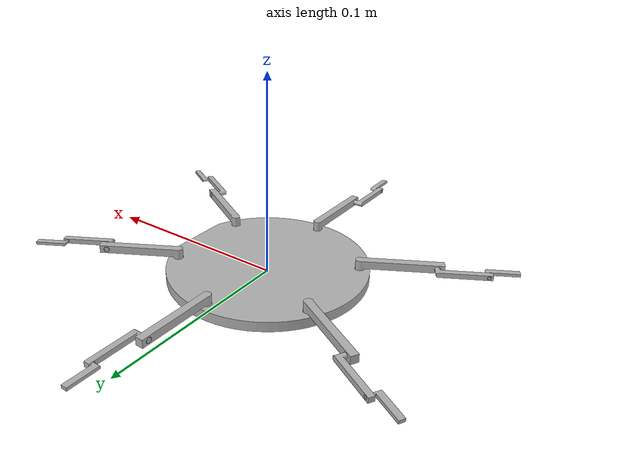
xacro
<?xml version="1.0" ?>
<robot name="My_Hexapod" xmlns:xacro="http://www.ros.org/wiki/xacro">

<xacro:include filename="$(find My_Hexapod_description)/urdf/materials.xacro" />
<xacro:include filename="$(find My_Hexapod_description)/urdf/My_Hexapod.trans" />
<xacro:include filename="$(find My_Hexapod_description)/urdf/My_Hexapod.gazebo" />
<link name="base_link">
  <inertial>
    <origin xyz="-0.0005142477518053707 -0.0002721610035063814 0.002333170102402172" rpy="0 0 0"/>
    <mass value="0.04063775659552386"/>
    <inertia ixx="2.5e-05" iyy="2.5e-05" izz="5e-05" ixy="-0.0" iyz="0.0" ixz="0.0"/>
  </inertial>
  <visual>
    <origin xyz="0 0 0" rpy="0 0 0"/>
    <geometry>
      <mesh filename="package://My_Hexapod_description/meshes/base_link.stl" scale="0.001 0.001 0.001"/>
    </geometry>
    <material name="silver"/>
  </visual>
  <collision>
    <origin xyz="0 0 0" rpy="0 0 0"/>
    <geometry>
      <mesh filename="package://My_Hexapod_description/meshes/base_link.stl" scale="0.001 0.001 0.001"/>
    </geometry>
  </collision>
</link>

<link name="link1_leg_1">
  <inertial>
    <origin xyz="4.604251569327231e-07 0.015854697725990623 0.002355706089951396" rpy="0 0 0"/>
    <mass value="0.0007847716288169711"/>
    <inertia ixx="0.0" iyy="0.0" izz="0.0" ixy="-0.0" iyz="-0.0" ixz="-0.0"/>
  </inertial>
  <visual>
    <origin xyz="8.3e-05 -0.044728 -0.004833" rpy="0 0 0"/>
    <geometry>
      <mesh filename="package://My_Hexapod_description/meshes/link1_leg_1.stl" scale="0.001 0.001 0.001"/>
    </geometry>
    <material name="silver"/>
  </visual>
  <collision>
    <origin xyz="8.3e-05 -0.044728 -0.004833" rpy="0 0 0"/>
    <geometry>
      <mesh filename="package://My_Hexapod_description/meshes/link1_leg_1.stl" scale="0.001 0.001 0.001"/>
    </geometry>
  </collision>
</link>

<link name="link2_leg_1">
  <inertial>
    <origin xyz="0.006883441772277335 0.009873057439048788 1.222460352286181e-07" rpy="0 0 0"/>
    <mass value="0.0002276885728110617"/>
    <inertia ixx="0.0" iyy="0.0" izz="0.0" ixy="-0.0" iyz="0.0" ixz="0.0"/>
  </inertial>
  <visual>
    <origin xyz="0.002083 -0.081228 -0.007833" rpy="0 0 0"/>
    <geometry>
      <mesh filename="package://My_Hexapod_description/meshes/link2_leg_1.stl" scale="0.001 0.001 0.001"/>
    </geometry>
    <material name="silver"/>
  </visual>
  <collision>
    <origin xyz="0.002083 -0.081228 -0.007833" rpy="0 0 0"/>
    <geometry>
      <mesh filename="package://My_Hexapod_description/meshes/link2_leg_1.stl" scale="0.001 0.001 0.001"/>
    </geometry>
  </collision>
</link>

<link name="link3_leg_1">
  <inertial>
    <origin xyz="-0.0016791528137478826 0.0065448384486425926 1.1233224573962974e-07" rpy="0 0 0"/>
    <mass value="8.185246040836488e-05"/>
    <inertia ixx="0.0" iyy="0.0" izz="0.0" ixy="0.0" iyz="0.0" ixz="0.0"/>
  </inertial>
  <visual>
    <origin xyz="-0.003917 -0.104233 -0.007833" rpy="0 0 0"/>
    <geometry>
      <mesh filename="package://My_Hexapod_description/meshes/link3_leg_1.stl" scale="0.001 0.001 0.001"/>
    </geometry>
    <material name="silver"/>
  </visual>
  <collision>
    <origin xyz="-0.003917 -0.104233 -0.007833" rpy="0 0 0"/>
    <geometry>
      <mesh filename="package://My_Hexapod_description/meshes/link3_leg_1.stl" scale="0.001 0.001 0.001"/>
    </geometry>
  </collision>
</link>

<link name="link1_leg_2">
  <inertial>
    <origin xyz="-0.013730393178288051 0.007927268361220235 0.00235570601544559" rpy="0 0 0"/>
    <mass value="0.0007847716288169711"/>
    <inertia ixx="0.0" iyy="0.0" izz="0.0" ixy="0.0" iyz="-0.0" ixz="0.0"/>
  </inertial>
  <visual>
    <origin xyz="0.039054 -0.022228 -0.004833" rpy="0 0 0"/>
    <geometry>
      <mesh filename="package://My_Hexapod_description/meshes/link1_leg_2.stl" scale="0.001 0.001 0.001"/>
    </geometry>
    <material name="silver"/>
  </visual>
  <collision>
    <origin xyz="0.039054 -0.022228 -0.004833" rpy="0 0 0"/>
    <geometry>
      <mesh filename="package://My_Hexapod_description/meshes/link1_leg_2.stl" scale="0.001 0.001 0.001"/>
    </geometry>
  </collision>
</link>

<link name="link2_leg_2">
  <inertial>
    <origin xyz="-0.0073035772980677705 0.09260523411056112 0.0001671221715294222" rpy="0 0 0"/>
    <mass value="0.0002276885728110617"/>
    <inertia ixx="0.0" iyy="0.0" izz="0.0" ixy="0.0" iyz="0.0" ixz="-0.0"/>
  </inertial>
  <visual>
    <origin xyz="0.069469 0.042962 -0.007666" rpy="0 0 0"/>
    <geometry>
      <mesh filename="package://My_Hexapod_description/meshes/link2_leg_2.stl" scale="0.001 0.001 0.001"/>
    </geometry>
    <material name="silver"/>
  </visual>
  <collision>
    <origin xyz="0.069469 0.042962 -0.007666" rpy="0 0 0"/>
    <geometry>
      <mesh filename="package://My_Hexapod_description/meshes/link2_leg_2.stl" scale="0.001 0.001 0.001"/>
    </geometry>
  </collision>
</link>

<link name="link3_leg_2">
  <inertial>
    <origin xyz="-0.0029524668100918555 0.10609733990236751 0.0001671122577399332" rpy="0 0 0"/>
    <mass value="8.185246040836488e-05"/>
    <inertia ixx="0.0" iyy="0.0" izz="0.0" ixy="0.0" iyz="0.0" ixz="0.0"/>
  </inertial>
  <visual>
    <origin xyz="0.092392 0.049268 -0.007666" rpy="0 0 0"/>
    <geometry>
      <mesh filename="package://My_Hexapod_description/meshes/link3_leg_2.stl" scale="0.001 0.001 0.001"/>
    </geometry>
    <material name="silver"/>
  </visual>
  <collision>
    <origin xyz="0.092392 0.049268 -0.007666" rpy="0 0 0"/>
    <geometry>
      <mesh filename="package://My_Hexapod_description/meshes/link3_leg_2.stl" scale="0.001 0.001 0.001"/>
    </geometry>
  </collision>
</link>

<link name="link1_leg_3">
  <inertial>
    <origin xyz="-0.013730393178262787 -0.007927590368276751 0.0023557060899513944" rpy="0 0 0"/>
    <mass value="0.0007847716288169711"/>
    <inertia ixx="0.0" iyy="0.0" izz="0.0" ixy="-0.0" iyz="0.0" ixz="0.0"/>
  </inertial>
  <visual>
    <origin xyz="0.039054 0.022772 -0.004833" rpy="0 0 0"/>
    <geometry>
      <mesh filename="package://My_Hexapod_description/meshes/link1_leg_3.stl" scale="0.001 0.001 0.001"/>
    </geometry>
    <material name="silver"/>
  </visual>
  <collision>
    <origin xyz="0.039054 0.022772 -0.004833" rpy="0 0 0"/>
    <geometry>
      <mesh filename="package://My_Hexapod_description/meshes/link1_leg_3.stl" scale="0.001 0.001 0.001"/>
    </geometry>
  </collision>
</link>

<link name="link2_leg_3">
  <inertial>
    <origin xyz="-0.15343155864516295 -0.0025039843319940025 0.0001671222460352265" rpy="0 0 0"/>
    <mass value="0.0002276885728110617"/>
    <inertia ixx="0.0" iyy="0.0" izz="0.0" ixy="-0.0" iyz="-0.0" ixz="-0.0"/>
  </inertial>
  <visual>
    <origin xyz="-0.071776 0.039226 -0.007666" rpy="0 0 0"/>
    <geometry>
      <mesh filename="package://My_Hexapod_description/meshes/link2_leg_3.stl" scale="0.001 0.001 0.001"/>
    </geometry>
    <material name="silver"/>
  </visual>
  <collision>
    <origin xyz="-0.071776 0.039226 -0.007666" rpy="0 0 0"/>
    <geometry>
      <mesh filename="package://My_Hexapod_description/meshes/link2_leg_3.stl" scale="0.001 0.001 0.001"/>
    </geometry>
  </collision>
</link>

<link name="link3_leg_3">
  <inertial>
    <origin xyz="-0.18586285357116175 0.0017033404502185823 0.00016711233224573577" rpy="0 0 0"/>
    <mass value="8.185246040836488e-05"/>
    <inertia ixx="0.0" iyy="0.0" izz="0.0" ixy="-0.0" iyz="0.0" ixz="0.0"/>
  </inertial>
  <visual>
    <origin xyz="-0.088698 0.055924 -0.007666" rpy="0 0 0"/>
    <geometry>
      <mesh filename="package://My_Hexapod_description/meshes/link3_leg_3.stl" scale="0.001 0.001 0.001"/>
    </geometry>
    <material name="silver"/>
  </visual>
  <collision>
    <origin xyz="-0.088698 0.055924 -0.007666" rpy="0 0 0"/>
    <geometry>
      <mesh filename="package://My_Hexapod_description/meshes/link3_leg_3.stl" scale="0.001 0.001 0.001"/>
    </geometry>
  </collision>
</link>

<link name="link1_leg_4">
  <inertial>
    <origin xyz="4.6042520746532637e-07 -0.015855019733003357 0.0023557060154455875" rpy="0 0 0"/>
    <mass value="0.0007847716288169711"/>
    <inertia ixx="0.0" iyy="0.0" izz="0.0" ixy="-0.0" iyz="0.0" ixz="0.0"/>
  </inertial>
  <visual>
    <origin xyz="8.3e-05 0.045272 -0.004833" rpy="0 0 0"/>
    <geometry>
      <mesh filename="package://My_Hexapod_description/meshes/link1_leg_4.stl" scale="0.001 0.001 0.001"/>
    </geometry>
    <material name="silver"/>
  </visual>
  <collision>
    <origin xyz="8.3e-05 0.045272 -0.004833" rpy="0 0 0"/>
    <geometry>
      <mesh filename="package://My_Hexapod_description/meshes/link1_leg_4.stl" scale="0.001 0.001 0.001"/>
    </geometry>
  </collision>
</link>

<link name="link2_leg_4">
  <inertial>
    <origin xyz="-0.006882520921912936 -0.009873379446061509 1.2217152941911003e-07" rpy="0 0 0"/>
    <mass value="0.0002276885728110617"/>
    <inertia ixx="0.0" iyy="0.0" izz="0.0" ixy="-0.0" iyz="-0.0" ixz="-0.0"/>
  </inertial>
  <visual>
    <origin xyz="-0.001917 0.081772 -0.007833" rpy="0 0 0"/>
    <geometry>
      <mesh filename="package://My_Hexapod_description/meshes/link2_leg_4.stl" scale="0.001 0.001 0.001"/>
    </geometry>
    <material name="silver"/>
  </visual>
  <collision>
    <origin xyz="-0.001917 0.081772 -0.007833" rpy="0 0 0"/>
    <geometry>
      <mesh filename="package://My_Hexapod_description/meshes/link2_leg_4.stl" scale="0.001 0.001 0.001"/>
    </geometry>
  </collision>
</link>

<link name="link3_leg_4">
  <inertial>
    <origin xyz="-0.00590292633588772 -0.21582716045565534 0.00016711225773992974" rpy="0 0 0"/>
    <mass value="8.185246040836488e-05"/>
    <inertia ixx="0.0" iyy="0.0" izz="0.0" ixy="0.0" iyz="-0.0" ixz="0.0"/>
  </inertial>
  <visual>
    <origin xyz="-0.004 -0.104505 -0.007666" rpy="0 0 0"/>
    <geometry>
      <mesh filename="package://My_Hexapod_description/meshes/link3_leg_4.stl" scale="0.001 0.001 0.001"/>
    </geometry>
    <material name="silver"/>
  </visual>
  <collision>
    <origin xyz="-0.004 -0.104505 -0.007666" rpy="0 0 0"/>
    <geometry>
      <mesh filename="package://My_Hexapod_description/meshes/link3_leg_4.stl" scale="0.001 0.001 0.001"/>
    </geometry>
  </collision>
</link>

<link name="link1_leg_5">
  <inertial>
    <origin xyz="0.013730314028652428 -0.007927590368233008 0.0023557060154455875" rpy="0 0 0"/>
    <mass value="0.0007847716288169711"/>
    <inertia ixx="0.0" iyy="0.0" izz="0.0" ixy="0.0" iyz="0.0" ixz="-0.0"/>
  </inertial>
  <visual>
    <origin xyz="-0.038889 0.022772 -0.004833" rpy="0 0 0"/>
    <geometry>
      <mesh filename="package://My_Hexapod_description/meshes/link1_leg_5.stl" scale="0.001 0.001 0.001"/>
    </geometry>
    <material name="silver"/>
  </visual>
  <collision>
    <origin xyz="-0.038889 0.022772 -0.004833" rpy="0 0 0"/>
    <geometry>
      <mesh filename="package://My_Hexapod_description/meshes/link1_leg_5.stl" scale="0.001 0.001 0.001"/>
    </geometry>
  </collision>
</link>

<link name="link2_leg_5">
  <inertial>
    <origin xyz="0.14646549814843218 -0.0076405561175739295 0.00016712217152942046" rpy="0 0 0"/>
    <mass value="0.0002276885728110617"/>
    <inertia ixx="0.0" iyy="0.0" izz="0.0" ixy="0.0" iyz="-0.0" ixz="0.0"/>
  </inertial>
  <visual>
    <origin xyz="0.069858 0.042547 -0.007666" rpy="0 0 0"/>
    <geometry>
      <mesh filename="package://My_Hexapod_description/meshes/link2_leg_5.stl" scale="0.001 0.001 0.001"/>
    </geometry>
    <material name="silver"/>
  </visual>
  <collision>
    <origin xyz="0.069858 0.042547 -0.007666" rpy="0 0 0"/>
    <geometry>
      <mesh filename="package://My_Hexapod_description/meshes/link2_leg_5.stl" scale="0.001 0.001 0.001"/>
    </geometry>
  </collision>
</link>

<link name="link3_leg_5">
  <inertial>
    <origin xyz="0.18796038766045628 -0.008520661909380306 0.00016711225773992974" rpy="0 0 0"/>
    <mass value="8.185246040836488e-05"/>
    <inertia ixx="0.0" iyy="0.0" izz="0.0" ixy="0.0" iyz="0.0" ixz="0.0"/>
  </inertial>
  <visual>
    <origin xyz="0.092781 0.048853 -0.007666" rpy="0 0 0"/>
    <geometry>
      <mesh filename="package://My_Hexapod_description/meshes/link3_leg_5.stl" scale="0.001 0.001 0.001"/>
    </geometry>
    <material name="silver"/>
  </visual>
  <collision>
    <origin xyz="0.092781 0.048853 -0.007666" rpy="0 0 0"/>
    <geometry>
      <mesh filename="package://My_Hexapod_description/meshes/link3_leg_5.stl" scale="0.001 0.001 0.001"/>
    </geometry>
  </collision>
</link>

<link name="link1_leg_6">
  <inertial>
    <origin xyz="0.01373031402862717 0.00792726836126395 0.0023557060154455875" rpy="0 0 0"/>
    <mass value="0.0007847716288169711"/>
    <inertia ixx="0.0" iyy="0.0" izz="0.0" ixy="-0.0" iyz="-0.0" ixz="-0.0"/>
  </inertial>
  <visual>
    <origin xyz="-0.038889 -0.022228 -0.004833" rpy="0 0 0"/>
    <geometry>
      <mesh filename="package://My_Hexapod_description/meshes/link1_leg_6.stl" scale="0.001 0.001 0.001"/>
    </geometry>
    <material name="silver"/>
  </visual>
  <collision>
    <origin xyz="-0.038889 -0.022228 -0.004833" rpy="0 0 0"/>
    <geometry>
      <mesh filename="package://My_Hexapod_description/meshes/link1_leg_6.stl" scale="0.001 0.001 0.001"/>
    </geometry>
  </collision>
</link>

<link name="link2_leg_6">
  <inertial>
    <origin xyz="0.009991479495527283 0.002439662324981162 1.2217152942084475e-07" rpy="0 0 0"/>
    <mass value="0.0002276885728110617"/>
    <inertia ixx="0.0" iyy="0.0" izz="0.0" ixy="-0.0" iyz="0.0" ixz="0.0"/>
  </inertial>
  <visual>
    <origin xyz="-0.071499 -0.038746 -0.007833" rpy="0 0 0"/>
    <geometry>
      <mesh filename="package://My_Hexapod_description/meshes/link2_leg_6.stl" scale="0.001 0.001 0.001"/>
    </geometry>
    <material name="silver"/>
  </visual>
  <collision>
    <origin xyz="-0.071499 -0.038746 -0.007833" rpy="0 0 0"/>
    <geometry>
      <mesh filename="package://My_Hexapod_description/meshes/link2_leg_6.stl" scale="0.001 0.001 0.001"/>
    </geometry>
  </collision>
</link>

<link name="link3_leg_6">
  <inertial>
    <origin xyz="0.003078774421526126 0.007758337542768577 1.1225773993359112e-07" rpy="0 0 0"/>
    <mass value="8.185246040836488e-05"/>
    <inertia ixx="0.0" iyy="0.0" izz="0.0" ixy="-0.0" iyz="0.0" ixz="0.0"/>
  </inertial>
  <visual>
    <origin xyz="-0.093921 -0.045918 -0.007833" rpy="0 0 0"/>
    <geometry>
      <mesh filename="package://My_Hexapod_description/meshes/link3_leg_6.stl" scale="0.001 0.001 0.001"/>
    </geometry>
    <material name="silver"/>
  </visual>
  <collision>
    <origin xyz="-0.093921 -0.045918 -0.007833" rpy="0 0 0"/>
    <geometry>
      <mesh filename="package://My_Hexapod_description/meshes/link3_leg_6.stl" scale="0.001 0.001 0.001"/>
    </geometry>
  </collision>
</link>

<joint name="Revolute 1" type="continuous">
  <origin xyz="-8.3e-05 0.044728 0.004833" rpy="0 0 0"/>
  <parent link="base_link"/>
  <child link="link1_leg_1"/>
  <axis xyz="-0.0 0.0 -1.0"/>
</joint>

<joint name="Revolute 2" type="continuous">
  <origin xyz="-0.002 0.0365 0.003" rpy="0 0 0"/>
  <parent link="link1_leg_1"/>
  <child link="link2_leg_1"/>
  <axis xyz="1.0 -0.0 -0.0"/>
</joint>

<joint name="Revolute 3" type="continuous">
  <origin xyz="0.006 0.023005 0.0" rpy="0 0 0"/>
  <parent link="link2_leg_1"/>
  <child link="link3_leg_1"/>
  <axis xyz="-1.0 0.0 0.0"/>
</joint>

<joint name="Revolute 4" type="continuous">
  <origin xyz="-0.039054 0.022228 0.004833" rpy="0 0 0"/>
  <parent link="base_link"/>
  <child link="link1_leg_2"/>
  <axis xyz="-0.0 0.0 -1.0"/>
</joint>

<joint name="Revolute 5" type="continuous">
  <origin xyz="-0.030415 -0.06519 0.002833" rpy="0 0 0"/>
  <parent link="link1_leg_2"/>
  <child link="link2_leg_2"/>
  <axis xyz="0.5 0.866025 0.0"/>
</joint>

<joint name="Revolute 6" type="continuous">
  <origin xyz="-0.022923 -0.006306 0.0" rpy="0 0 0"/>
  <parent link="link2_leg_2"/>
  <child link="link3_leg_2"/>
  <axis xyz="-0.5 -0.866025 -0.0"/>
</joint>

<joint name="Revolute 7" type="continuous">
  <origin xyz="-0.039054 -0.022772 0.004833" rpy="0 0 0"/>
  <parent link="base_link"/>
  <child link="link1_leg_3"/>
  <axis xyz="-0.0 0.0 -1.0"/>
</joint>

<joint name="Revolute 8" type="continuous">
  <origin xyz="0.11083 -0.016454 0.002833" rpy="0 0 0"/>
  <parent link="link1_leg_3"/>
  <child link="link2_leg_3"/>
  <axis xyz="-0.5 0.866025 0.0"/>
</joint>

<joint name="Revolute 9" type="continuous">
  <origin xyz="0.016922 -0.016698 0.0" rpy="0 0 0"/>
  <parent link="link2_leg_3"/>
  <child link="link3_leg_3"/>
  <axis xyz="0.5 -0.866025 -0.0"/>
</joint>

<joint name="Revolute 10" type="continuous">
  <origin xyz="-8.3e-05 -0.045272 0.004833" rpy="0 0 0"/>
  <parent link="base_link"/>
  <child link="link1_leg_4"/>
  <axis xyz="-0.0 0.0 -1.0"/>
</joint>

<joint name="Revolute 11" type="continuous">
  <origin xyz="0.002 -0.0365 0.003" rpy="0 0 0"/>
  <parent link="link1_leg_4"/>
  <child link="link2_leg_4"/>
  <axis xyz="-1.0 -0.0 -0.0"/>
</joint>

<joint name="Revolute 12" type="continuous">
  <origin xyz="0.002083 0.186277 -0.000167" rpy="0 0 0"/>
  <parent link="link2_leg_4"/>
  <child link="link3_leg_4"/>
  <axis xyz="1.0 -0.0 -0.0"/>
</joint>

<joint name="Revolute 13" type="continuous">
  <origin xyz="0.038889 -0.022772 0.004833" rpy="0 0 0"/>
  <parent link="base_link"/>
  <child link="link1_leg_5"/>
  <axis xyz="-0.0 0.0 -1.0"/>
</joint>

<joint name="Revolute 14" type="continuous">
  <origin xyz="-0.108747 -0.019775 0.002833" rpy="0 0 0"/>
  <parent link="link1_leg_5"/>
  <child link="link2_leg_5"/>
  <axis xyz="-0.5 -0.866025 0.0"/>
</joint>

<joint name="Revolute 15" type="continuous">
  <origin xyz="-0.022923 -0.006306 0.0" rpy="0 0 0"/>
  <parent link="link2_leg_5"/>
  <child link="link3_leg_5"/>
  <axis xyz="0.5 0.866025 -0.0"/>
</joint>

<joint name="Revolute 16" type="continuous">
  <origin xyz="0.038889 0.022228 0.004833" rpy="0 0 0"/>
  <parent link="base_link"/>
  <child link="link1_leg_6"/>
  <axis xyz="-0.0 0.0 -1.0"/>
</joint>

<joint name="Revolute 17" type="continuous">
  <origin xyz="0.03261 0.016518 0.003" rpy="0 0 0"/>
  <parent link="link1_leg_6"/>
  <child link="link2_leg_6"/>
  <axis xyz="0.5 -0.866025 -0.0"/>
</joint>

<joint name="Revolute 18" type="continuous">
  <origin xyz="0.022422 0.007172 0.0" rpy="0 0 0"/>
  <parent link="link2_leg_6"/>
  <child link="link3_leg_6"/>
  <axis xyz="-0.5 0.866025 0.0"/>
</joint>

</robot>

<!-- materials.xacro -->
<robot name="My_Hexapod" xmlns:xacro="http://www.ros.org/wiki/xacro" >

<material name="silver">
  <color rgba="0.700 0.700 0.700 1.000"/>
</material>

</robot>

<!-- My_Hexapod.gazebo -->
<robot name="My_Hexapod" xmlns:xacro="http://www.ros.org/wiki/xacro" >

<xacro:property name="body_color" value="Gazebo/Silver" />

<gazebo>
  <plugin name="control" filename="libgazebo_ros_control.so"/>
</gazebo>
<gazebo reference="base_link">
  <material>${body_color}</material>
  <mu1>0.2</mu1>
  <mu2>0.2</mu2>
  <selfCollide>true</selfCollide>
  <gravity>true</gravity>
</gazebo>

<gazebo reference="link1_leg_1">
  <material>${body_color}</material>
  <mu1>0.2</mu1>
  <mu2>0.2</mu2>
  <selfCollide>true</selfCollide>
</gazebo>

<gazebo reference="link2_leg_1">
  <material>${body_color}</material>
  <mu1>0.2</mu1>
  <mu2>0.2</mu2>
  <selfCollide>true</selfCollide>
</gazebo>

<gazebo reference="link3_leg_1">
  <material>${body_color}</material>
  <mu1>0.2</mu1>
  <mu2>0.2</mu2>
  <selfCollide>true</selfCollide>
</gazebo>

<gazebo reference="link1_leg_2">
  <material>${body_color}</material>
  <mu1>0.2</mu1>
  <mu2>0.2</mu2>
  <selfCollide>true</selfCollide>
</gazebo>

<gazebo reference="link2_leg_2">
  <material>${body_color}</material>
  <mu1>0.2</mu1>
  <mu2>0.2</mu2>
  <selfCollide>true</selfCollide>
</gazebo>

<gazebo reference="link3_leg_2">
  <material>${body_color}</material>
  <mu1>0.2</mu1>
  <mu2>0.2</mu2>
  <selfCollide>true</selfCollide>
</gazebo>

<gazebo reference="link1_leg_3">
  <material>${body_color}</material>
  <mu1>0.2</mu1>
  <mu2>0.2</mu2>
  <selfCollide>true</selfCollide>
</gazebo>

<gazebo reference="link2_leg_3">
  <material>${body_color}</material>
  <mu1>0.2</mu1>
  <mu2>0.2</mu2>
  <selfCollide>true</selfCollide>
</gazebo>

<gazebo reference="link3_leg_3">
  <material>${body_color}</material>
  <mu1>0.2</mu1>
  <mu2>0.2</mu2>
  <selfCollide>true</selfCollide>
</gazebo>

<gazebo reference="link1_leg_4">
  <material>${body_color}</material>
  <mu1>0.2</mu1>
  <mu2>0.2</mu2>
  <selfCollide>true</selfCollide>
</gazebo>

<gazebo reference="link2_leg_4">
  <material>${body_color}</material>
  <mu1>0.2</mu1>
  <mu2>0.2</mu2>
  <selfCollide>true</selfCollide>
</gazebo>

<gazebo reference="link3_leg_4">
  <material>${body_color}</material>
  <mu1>0.2</mu1>
  <mu2>0.2</mu2>
  <selfCollide>true</selfCollide>
</gazebo>

<gazebo reference="link1_leg_5">
  <material>${body_color}</material>
  <mu1>0.2</mu1>
  <mu2>0.2</mu2>
  <selfCollide>true</selfCollide>
</gazebo>

<gazebo reference="link2_leg_5">
  <material>${body_color}</material>
  <mu1>0.2</mu1>
  <mu2>0.2</mu2>
  <selfCollide>true</selfCollide>
</gazebo>

<gazebo reference="link3_leg_5">
  <material>${body_color}</material>
  <mu1>0.2</mu1>
  <mu2>0.2</mu2>
  <selfCollide>true</selfCollide>
</gazebo>

<gazebo reference="link1_leg_6">
  <material>${body_color}</material>
  <mu1>0.2</mu1>
  <mu2>0.2</mu2>
  <selfCollide>true</selfCollide>
</gazebo>

<gazebo reference="link2_leg_6">
  <material>${body_color}</material>
  <mu1>0.2</mu1>
  <mu2>0.2</mu2>
  <selfCollide>true</selfCollide>
</gazebo>

<gazebo reference="link3_leg_6">
  <material>${body_color}</material>
  <mu1>0.2</mu1>
  <mu2>0.2</mu2>
  <selfCollide>true</selfCollide>
</gazebo>

</robot>
